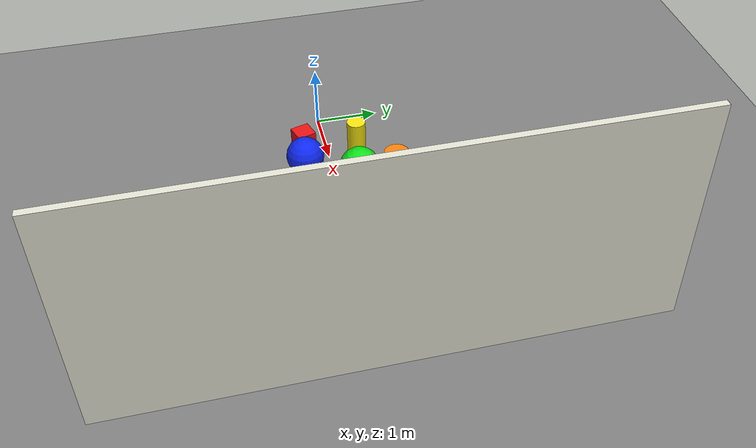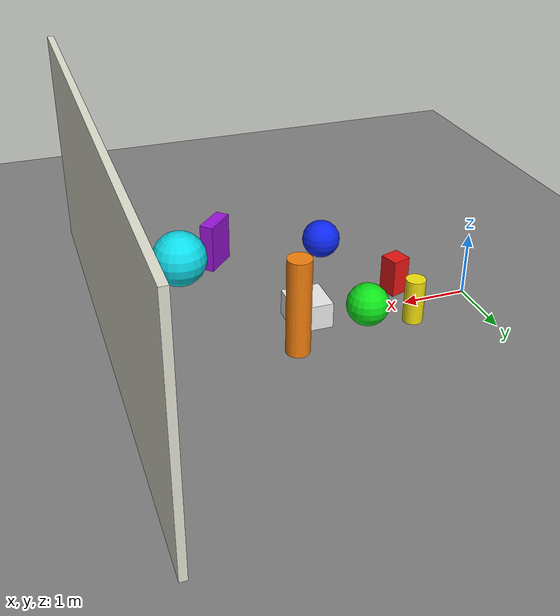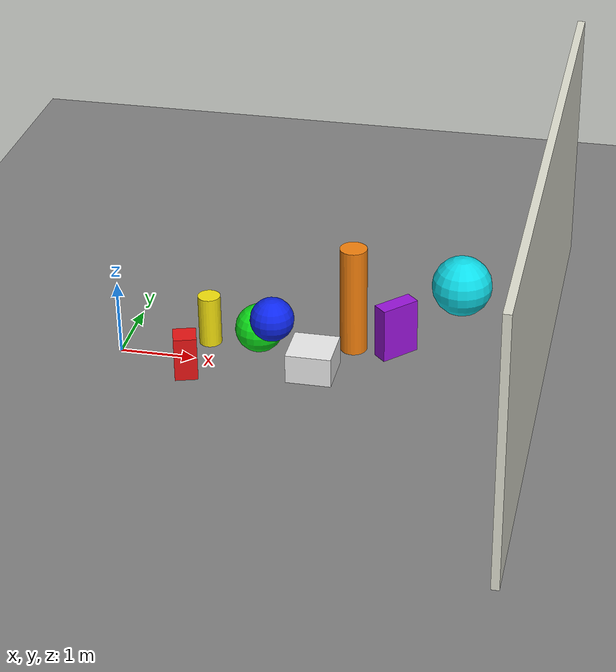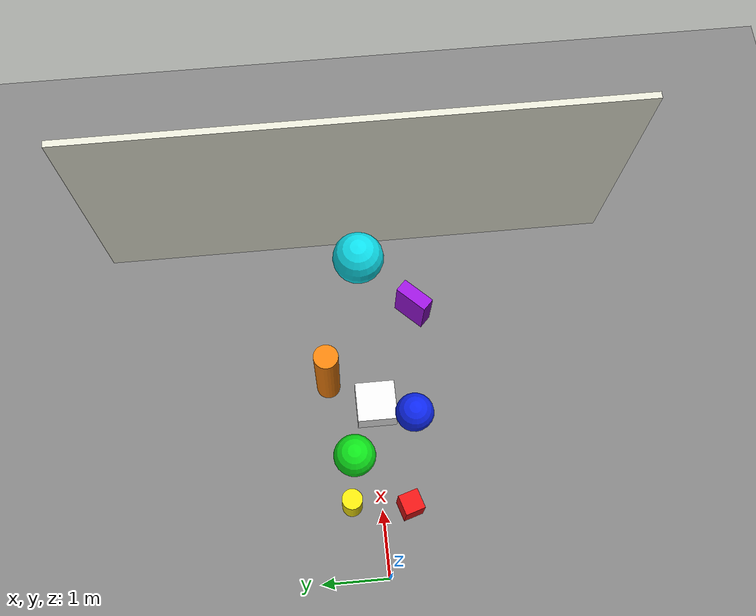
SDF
<?xml version="1.0" ?>
<sdf version="1.9">
  <world name="l515_demo">

    <gravity>0 0 -9.8</gravity>

    <!-- Required Gazebo Harmonic system plugins -->
    <plugin filename="gz-sim-physics-system"
            name="gz::sim::systems::Physics"/>
    <plugin filename="gz-sim-user-commands-system"
            name="gz::sim::systems::UserCommands"/>
    <plugin filename="gz-sim-scene-broadcaster-system"
            name="gz::sim::systems::SceneBroadcaster"/>
    <!-- CRITICAL: sensors plugin with ogre2 required for camera rendering -->
    <plugin filename="gz-sim-sensors-system"
            name="gz::sim::systems::Sensors">
      <render_engine>ogre2</render_engine>
    </plugin>

    <!-- Main directional light -->
    <light name="sun" type="directional">
      <cast_shadows>true</cast_shadows>
      <pose>0 0 10 0 0 0</pose>
      <diffuse>0.9 0.9 0.9 1</diffuse>
      <specular>0.35 0.35 0.35 1</specular>
      <direction>0.3 -0.5 -0.9</direction>
      <attenuation>
        <range>1000</range>
        <constant>0.9</constant>
        <linear>0.01</linear>
        <quadratic>0.001</quadratic>
      </attenuation>
    </light>

    <!-- Soft fill light from the opposite side -->
    <light name="fill_light" type="directional">
      <cast_shadows>false</cast_shadows>
      <pose>0 0 5 0 0 0</pose>
      <diffuse>0.3 0.3 0.35 1</diffuse>
      <specular>0.0 0.0 0.0 1</specular>
      <direction>-0.3 0.5 -0.8</direction>
    </light>

    <!-- ============================================================
         Ground plane
         ============================================================ -->
    <model name="ground_plane">
      <static>true</static>
      <link name="link">
        <collision name="collision">
          <geometry>
            <plane>
              <normal>0 0 1</normal>
              <size>20 20</size>
            </plane>
          </geometry>
        </collision>
        <visual name="visual">
          <geometry>
            <plane>
              <normal>0 0 1</normal>
              <size>20 20</size>
            </plane>
          </geometry>
          <material>
            <ambient>0.35 0.35 0.35 1</ambient>
            <diffuse>0.50 0.50 0.50 1</diffuse>
            <specular>0.05 0.05 0.05 1</specular>
          </material>
        </visual>
      </link>
    </model>

    <model name="back_wall">
      <static>true</static>
      <pose>5.5 0 1.75 0 0 0</pose>
      <link name="link">
        <collision name="collision">
          <geometry><box><size>0.1 8.0 3.5</size></box></geometry>
        </collision>
        <visual name="visual">
          <geometry><box><size>0.1 8.0 3.5</size></box></geometry>
          <material>
            <ambient>0.80 0.80 0.75 1</ambient>
            <diffuse>0.88 0.88 0.82 1</diffuse>
            <specular>0.10 0.10 0.10 1</specular>
          </material>
        </visual>
      </link>
    </model>

    <!-- ============================================================
         Object 1 — RED BOX  (nearest, left)  ~1.0 m
         ============================================================ -->
    <model name="red_box">
      <static>true</static>
      <pose>1.0 -0.4 0.3 0 0 0.3</pose>
      <link name="link">
        <collision name="collision">
          <geometry><box><size>0.3 0.3 0.6</size></box></geometry>
        </collision>
        <visual name="visual">
          <geometry><box><size>0.3 0.3 0.6</size></box></geometry>
          <material>
            <ambient>0.85 0.08 0.08 1</ambient>
            <diffuse>0.90 0.08 0.08 1</diffuse>
            <specular>0.40 0.20 0.20 1</specular>
          </material>
        </visual>
      </link>
    </model>

    <!-- ============================================================
         Object 2 — YELLOW CYLINDER  (nearest, right)  ~1.0 m
         ============================================================ -->
    <model name="yellow_cylinder">
      <static>true</static>
      <pose>1.1 0.45 0.35 0 0 0</pose>
      <link name="link">
        <collision name="collision">
          <geometry><cylinder><radius>0.15</radius><length>0.70</length></cylinder></geometry>
        </collision>
        <visual name="visual">
          <geometry><cylinder><radius>0.15</radius><length>0.70</length></cylinder></geometry>
          <material>
            <ambient>0.95 0.85 0.05 1</ambient>
            <diffuse>0.95 0.88 0.05 1</diffuse>
            <specular>0.40 0.40 0.10 1</specular>
          </material>
        </visual>
      </link>
    </model>

    <!-- ============================================================
         Object 3 — GREEN SPHERE  (mid-near, center-right)  ~1.8 m
         ============================================================ -->
    <model name="green_sphere">
      <static>true</static>
      <pose>1.8 0.35 0.35 0 0 0</pose>
      <link name="link">
        <collision name="collision">
          <geometry><sphere><radius>0.32</radius></sphere></geometry>
        </collision>
        <visual name="visual">
          <geometry><sphere><radius>0.32</radius></sphere></geometry>
          <material>
            <ambient>0.05 0.80 0.10 1</ambient>
            <diffuse>0.05 0.88 0.10 1</diffuse>
            <specular>0.20 0.50 0.20 1</specular>
          </material>
        </visual>
      </link>
    </model>

    <!-- ============================================================
         Object 4 — BLUE SPHERE  (mid, left, elevated)  ~2.2 m
         ============================================================ -->
    <model name="blue_sphere">
      <static>true</static>
      <pose>2.2 -0.55 1.05 0 0 0</pose>
      <link name="link">
        <collision name="collision">
          <geometry><sphere><radius>0.28</radius></sphere></geometry>
        </collision>
        <visual name="visual">
          <geometry><sphere><radius>0.28</radius></sphere></geometry>
          <material>
            <ambient>0.05 0.15 0.90 1</ambient>
            <diffuse>0.05 0.15 0.92 1</diffuse>
            <specular>0.25 0.25 0.55 1</specular>
          </material>
        </visual>
      </link>
    </model>

    <!-- ============================================================
         Object 5 — ORANGE TALL PILLAR  (mid-far, right)  ~3.0 m
         ============================================================ -->
    <model name="orange_pillar">
      <static>true</static>
      <pose>3.0 0.65 0.75 0 0 0</pose>
      <link name="link">
        <collision name="collision">
          <geometry><cylinder><radius>0.18</radius><length>1.50</length></cylinder></geometry>
        </collision>
        <visual name="visual">
          <geometry><cylinder><radius>0.18</radius><length>1.50</length></cylinder></geometry>
          <material>
            <ambient>0.95 0.48 0.05 1</ambient>
            <diffuse>0.95 0.50 0.05 1</diffuse>
            <specular>0.40 0.25 0.10 1</specular>
          </material>
        </visual>
      </link>
    </model>

    <!-- ============================================================
         Object 6 — PURPLE BOX  (far, left, eye-level)  ~3.8 m
         ============================================================ -->
    <model name="purple_box">
      <static>true</static>
      <pose>3.8 -0.7 1.2 0 0 0.8</pose>
      <link name="link">
        <collision name="collision">
          <geometry><box><size>0.5 0.2 0.7</size></box></geometry>
        </collision>
        <visual name="visual">
          <geometry><box><size>0.5 0.2 0.7</size></box></geometry>
          <material>
            <ambient>0.58 0.08 0.82 1</ambient>
            <diffuse>0.60 0.08 0.85 1</diffuse>
            <specular>0.35 0.15 0.45 1</specular>
          </material>
        </visual>
      </link>
    </model>

    <!-- ============================================================
         Object 7 — CYAN SPHERE  (deepest object, center)  ~4.5 m
         ============================================================ -->
    <model name="cyan_sphere">
      <static>true</static>
      <pose>4.5 0.05 1.45 0 0 0</pose>
      <link name="link">
        <collision name="collision">
          <geometry><sphere><radius>0.38</radius></sphere></geometry>
        </collision>
        <visual name="visual">
          <geometry><sphere><radius>0.38</radius></sphere></geometry>
          <material>
            <ambient>0.05 0.82 0.88 1</ambient>
            <diffuse>0.05 0.85 0.90 1</diffuse>
            <specular>0.20 0.50 0.55 1</specular>
          </material>
        </visual>
      </link>
    </model>

    <model name="white_box">
      <static>true</static>
      <pose>2.6 -0.05 0.2 0 0 0</pose>
      <link name="link">
        <collision name="collision">
          <geometry><box><size>0.6 0.6 0.4</size></box></geometry>
        </collision>
        <visual name="visual">
          <geometry><box><size>0.6 0.6 0.4</size></box></geometry>
          <material>
            <ambient>0.88 0.88 0.88 1</ambient>
            <diffuse>0.92 0.92 0.92 1</diffuse>
            <specular>0.50 0.50 0.50 1</specular>
          </material>
        </visual>
      </link>
    </model>

  </world>
</sdf>
